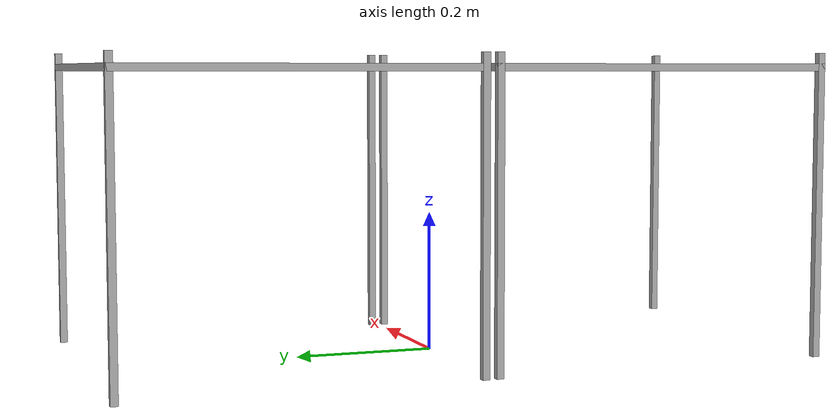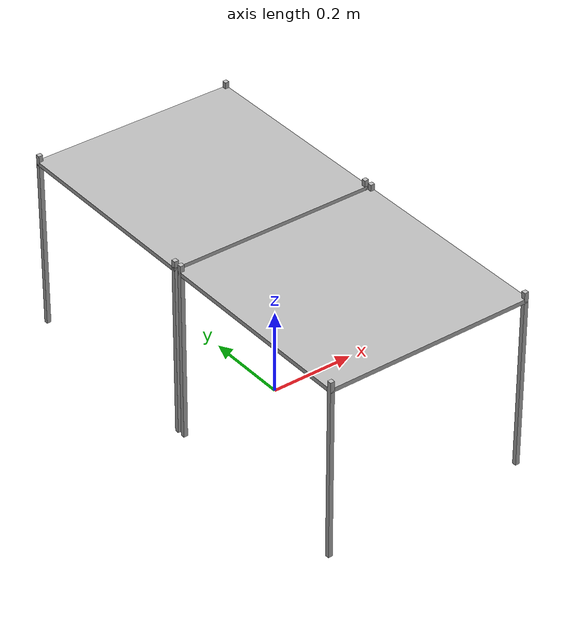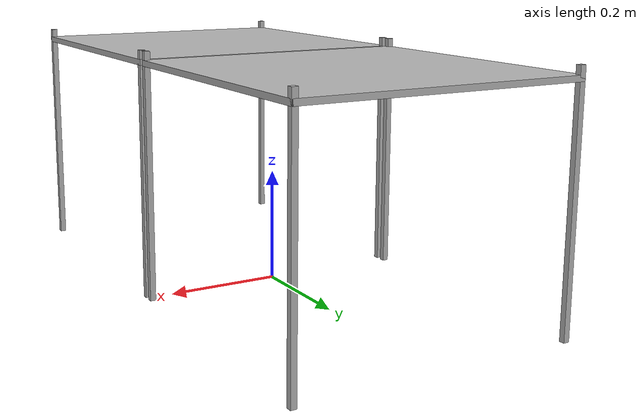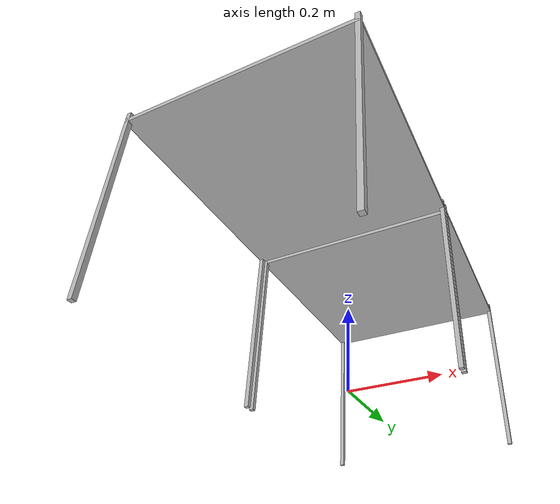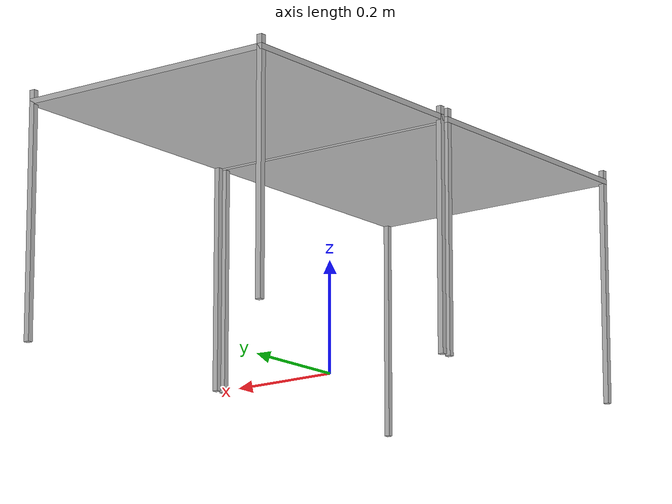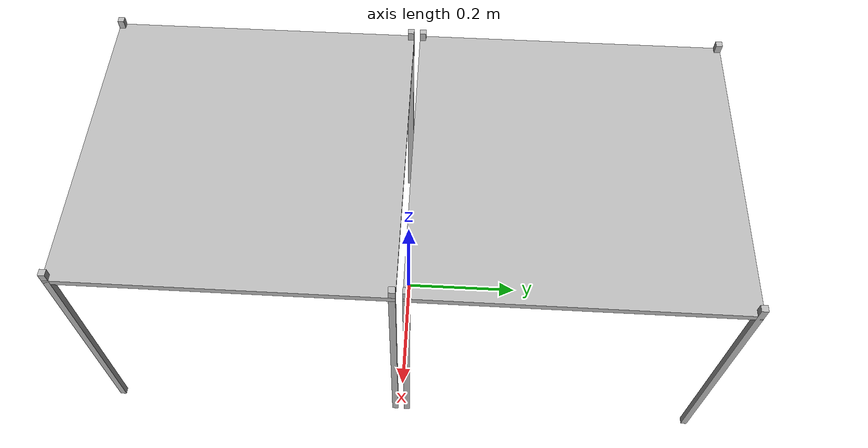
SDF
<?xml version="1.0" ?>
<sdf version="1.6">
  <model name="rwc2023/small_table">
    <static>true</static>
    <link name="1_link">
      <collision name="1_col">
        <geometry>
          <box>
            <size>0.495 0.495 0.01</size>
          </box>
        </geometry>
      </collision>
      <visual name="1_vis">
        <geometry>
          <box>
            <size>0.495 0.495 0.01</size>
          </box>
        </geometry>
      </visual>
      <pose>0.0 0.2525 0.41 0 0 0</pose>
    </link>
    <link name="2_link">
      <collision name="2_col">
        <geometry>
          <box>
            <size>0.01 0.01 0.43</size>
          </box>
        </geometry>
      </collision>
      <visual name="2_vis">
        <geometry>
          <box>
            <size>0.01 0.01 0.43</size>
          </box>
        </geometry>
      </visual>
      <pose>-0.2425 0.495 0.215 0 0 0</pose>
    </link>
    <link name="3_link">
      <collision name="3_col">
        <geometry>
          <box>
            <size>0.01 0.01 0.43</size>
          </box>
        </geometry>
      </collision>
      <visual name="3_vis">
        <geometry>
          <box>
            <size>0.01 0.01 0.43</size>
          </box>
        </geometry>
      </visual>
      <pose>0.2425 0.495 0.215 0 0 0</pose>
    </link>
    <link name="4_link">
      <collision name="4_col">
        <geometry>
          <box>
            <size>0.01 0.01 0.43</size>
          </box>
        </geometry>
      </collision>
      <visual name="4_vis">
        <geometry>
          <box>
            <size>0.01 0.01 0.43</size>
          </box>
        </geometry>
      </visual>
      <pose>-0.2425 0.01 0.215 0 0 0</pose>
    </link>
    <link name="5_link">
      <collision name="5_col">
        <geometry>
          <box>
            <size>0.01 0.01 0.43</size>
          </box>
        </geometry>
      </collision>
      <visual name="5_vis">
        <geometry>
          <box>
            <size>0.01 0.01 0.43</size>
          </box>
        </geometry>
      </visual>
      <pose>0.2425 0.01 0.215 0 0 0</pose>
    </link>

    <link name="1_link_second_table">
      <collision name="1_col_second_table">
        <geometry>
          <box>
            <size>0.495 0.495 0.01</size>
          </box>
        </geometry>
      </collision>
      <visual name="1_vis_second_table">
        <geometry>
          <box>
            <size>0.495 0.495 0.01</size>
          </box>
        </geometry>
      </visual>
      <pose>0 -0.2525 0.41 0 0 0</pose>
    </link>
    <link name="2_link_second_table">
      <collision name="2_col_second_table">
        <geometry>
          <box>
            <size>0.01 0.01 0.43</size>
          </box>
        </geometry>
      </collision>
      <visual name="2_vis_second_table">
        <geometry>
          <box>
            <size>0.01 0.01 0.43</size>
          </box>
        </geometry>
      </visual>
      <pose>-0.2425 -0.495 0.215 0 0 0</pose>
    </link>
    <link name="3_link_second_table">
      <collision name="3_col_second_table">
        <geometry>
          <box>
            <size>0.01 0.01 0.43</size>
          </box>
        </geometry>
      </collision>
      <visual name="3_vis_second_table">
        <geometry>
          <box>
            <size>0.01 0.01 0.43</size>
          </box>
        </geometry>
      </visual>
      <pose>0.2425 -0.495 0.215 0 0 0</pose>
    </link>
    <link name="4_link_second_table">
      <collision name="4_col_second_table">
        <geometry>
          <box>
            <size>0.01 0.01 0.43</size>
          </box>
        </geometry>
      </collision>
      <visual name="4_vis_second_table">
        <geometry>
          <box>
            <size>0.01 0.01 0.43</size>
          </box>
        </geometry>
      </visual>
      <pose>-0.2425 -0.01 0.215 0 0 0</pose>
    </link>
    <link name="5_link_second_table">
      <collision name="5_col_second_table">
        <geometry>
          <box>
            <size>0.01 0.01 0.43</size>
          </box>
        </geometry>
      </collision>
      <visual name="5_vis_second_table">
        <geometry>
          <box>
            <size>0.01 0.01 0.43</size>
          </box>
        </geometry>
      </visual>
      <pose>0.2425 -0.01 0.215 0 0 0</pose>
    </link>

    <link name="on_top_of">
      <virtual_volume name="on_top_of_vv">
        <geometry>
          <box>
            <size>0.475 0.95 0.25</size>
          </box>
        </geometry>
        <pose>0.0 0.0 0.56 0 0 0</pose>
      </virtual_volume>
    </link>
    <link name="in_front_of">
      <virtual_volume name="in_front_of_vv">
        <geometry>
          <box>
            <size>0.2 0.4 0.01</size>
          </box>
        </geometry>
        <pose>0.7475 0.0 0.005 0 0 0</pose>
      </virtual_volume>
    </link>
  </model>
</sdf>
